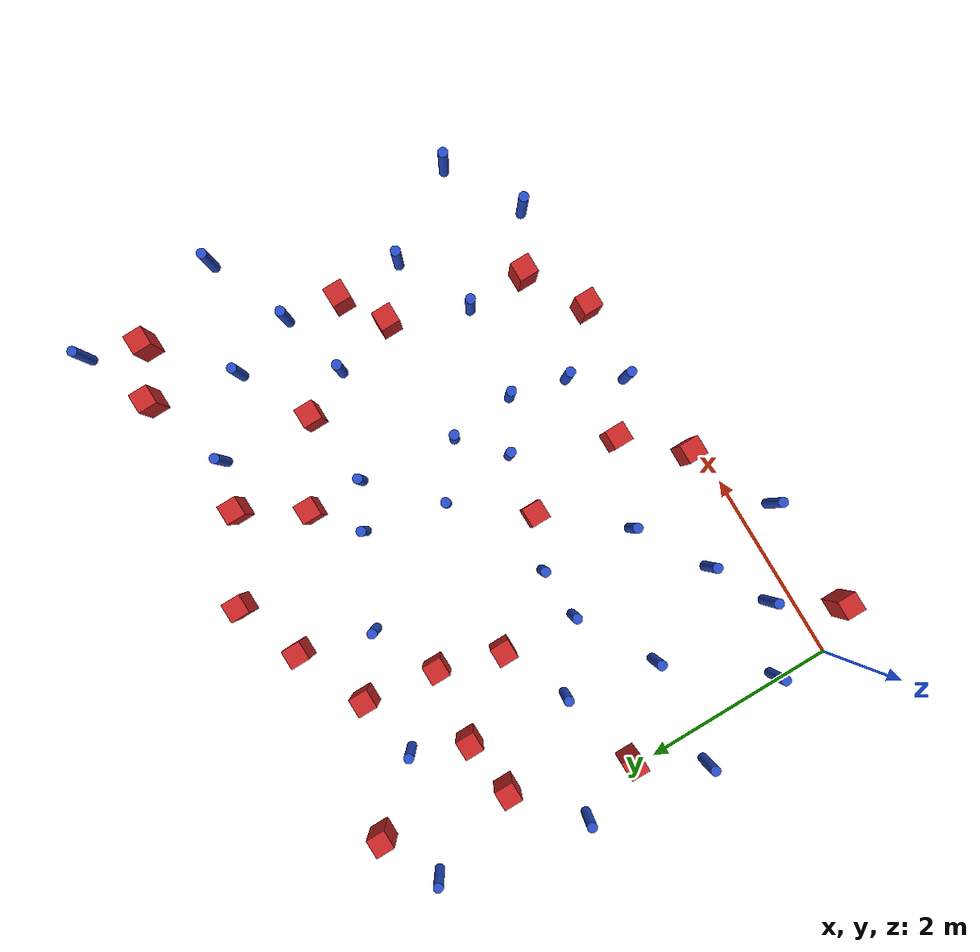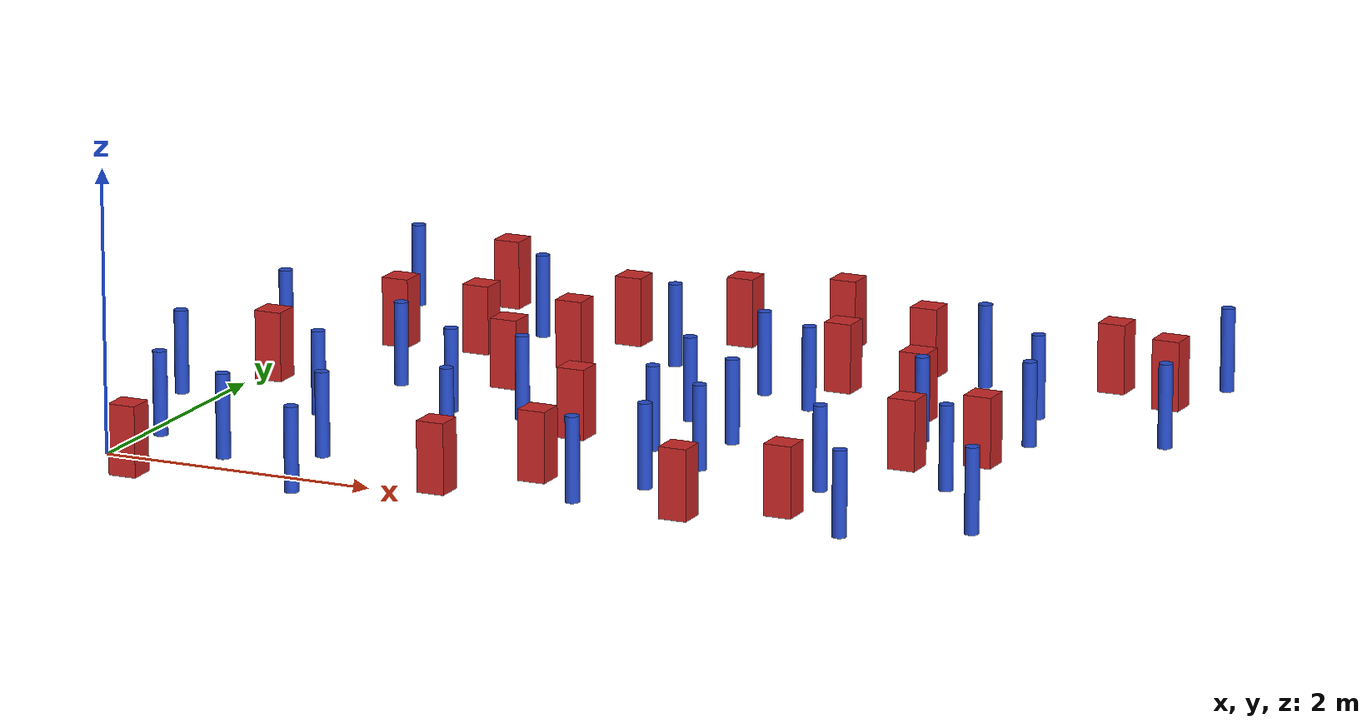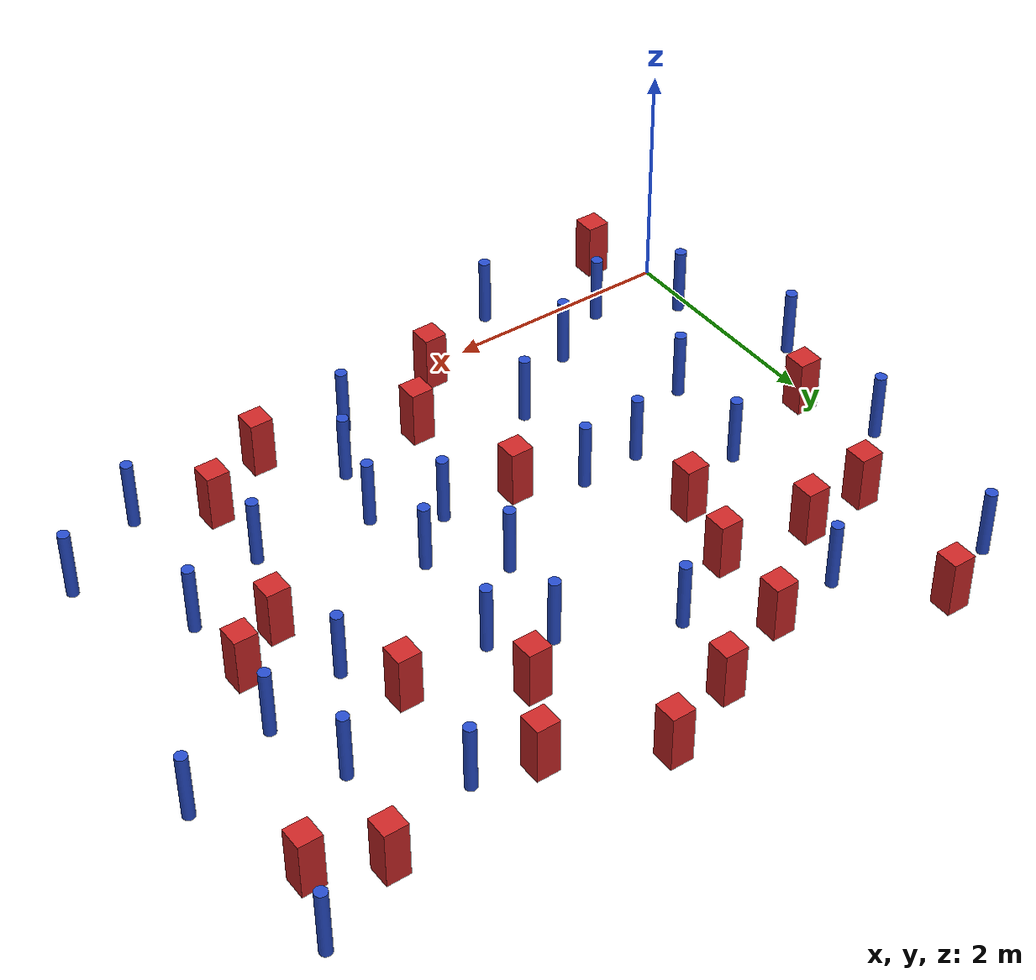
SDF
<sdf version="1.6">
 <model name="dense_23">
  <model name="square_post_obstacle2">
   <static>true</static>
   <pose>2.74004452826 4.44997248497 1.91545236811e-07 -7.35059704564e-06 1.12565212e-07 2.39332434364e-05</pose>
   <link name="link">
    <pose>0 0 0.25 0 -0 0</pose>
    <inertial>
     <mass>100</mass>
     <inertia>
      <ixx>0.166667</ixx>
      <ixy>0</ixy>
      <ixz>0</ixz>
      <iyy>0.166667</iyy>
      <iyz>0</iyz>
      <izz>0.166667</izz>
     </inertia>
    </inertial>
    <collision name="collision"><geometry><box><size>.2 .2 .5</size></box></geometry></collision>
    <visual name="visual">
     <geometry><box><size>.2 .2 .5</size></box></geometry>
     <material>
      <script><name>Gazebo/Red</name><uri>file://media/materials/scripts/gazebo.material</uri></script>
     </material>
    </visual>
   </link>
  </model>
  <model name="square_post_obstacle3">
   <static>true</static>
   <pose>5.5003414567 2.2988376357 1.91545236811e-07 -7.35059704564e-06 1.12565212e-07 2.39332434364e-05</pose>
   <link name="link">
    <pose>0 0 0.25 0 -0 0</pose>
    <inertial>
     <mass>100</mass>
     <inertia>
      <ixx>0.166667</ixx>
      <ixy>0</ixy>
      <ixz>0</ixz>
      <iyy>0.166667</iyy>
      <iyz>0</iyz>
      <izz>0.166667</izz>
     </inertia>
    </inertial>
    <collision name="collision"><geometry><box><size>.2 .2 .5</size></box></geometry></collision>
    <visual name="visual">
     <geometry><box><size>.2 .2 .5</size></box></geometry>
     <material>
      <script><name>Gazebo/Red</name><uri>file://media/materials/scripts/gazebo.material</uri></script>
     </material>
    </visual>
   </link>
  </model>
  <model name="square_post_obstacle5">
   <static>true</static>
   <pose>2.00726199635 4.14036605938 1.91545236811e-07 -7.35059704564e-06 1.12565212e-07 2.39332434364e-05</pose>
   <link name="link">
    <pose>0 0 0.25 0 -0 0</pose>
    <inertial>
     <mass>100</mass>
     <inertia>
      <ixx>0.166667</ixx>
      <ixy>0</ixy>
      <ixz>0</ixz>
      <iyy>0.166667</iyy>
      <iyz>0</iyz>
      <izz>0.166667</izz>
     </inertia>
    </inertial>
    <collision name="collision"><geometry><box><size>.2 .2 .5</size></box></geometry></collision>
    <visual name="visual">
     <geometry><box><size>.2 .2 .5</size></box></geometry>
     <material>
      <script><name>Gazebo/Red</name><uri>file://media/materials/scripts/gazebo.material</uri></script>
     </material>
    </visual>
   </link>
  </model>
  <model name="pole_obstacle5">
   <static>true</static>
   <pose>3.86888885222 3.05011009654 7.38925637345e-09 -8.47170692798e-08 1.24976764939e-08 -1.74513093025e-07</pose>
   <link name="link">
    <pose>0 0 0.3 0 -0 0</pose>
    <inertial>
     <mass>1</mass>
     <inertia><ixx>0.145833</ixx><ixy>0</ixy><ixz>0</ixz><iyy>0.145833</iyy><iyz>0</iyz><izz>0.125</izz></inertia>
    </inertial>
    <collision name="collision">
     <geometry><cylinder><radius>0.05</radius><length>.6</length></cylinder></geometry>
    </collision>
    <visual name="visual">
     <geometry><cylinder><radius>0.05</radius><length>.6</length></cylinder></geometry>
     <material>
      <script><name>Gazebo/Blue</name><uri>file://media/materials/scripts/gazebo.material</uri></script>
     </material>
    </visual>
   </link>
  </model>
  <model name="pole_obstacle19">
   <static>true</static>
   <pose>3.6784043861 0.794483437749 7.38925637345e-09 -8.471706928e-08 1.24976765177e-08 -1.74513093012e-07</pose>
   <link name="link">
    <pose>0 0 0.3 0 -0 0</pose>
    <inertial>
     <mass>1</mass>
     <inertia><ixx>0.145833</ixx><ixy>0</ixy><ixz>0</ixz><iyy>0.145833</iyy><iyz>0</iyz><izz>0.125</izz></inertia>
    </inertial>
    <collision name="collision">
     <geometry><cylinder><radius>0.05</radius><length>.6</length></cylinder></geometry>
    </collision>
    <visual name="visual">
     <geometry><cylinder><radius>0.05</radius><length>.6</length></cylinder></geometry>
     <material>
      <script><name>Gazebo/Blue</name><uri>file://media/materials/scripts/gazebo.material</uri></script>
     </material>
    </visual>
   </link>
  </model>
  <model name="pole_obstacle23">
   <static>true</static>
   <pose>6.09118267993 0.743534009738 7.38925637345e-09 -8.47170692799e-08 1.24976765038e-08 -1.74513093018e-07</pose>
   <link name="link">
    <pose>0 0 0.3 0 -0 0</pose>
    <inertial>
     <mass>1</mass>
     <inertia><ixx>0.145833</ixx><ixy>0</ixy><ixz>0</ixz><iyy>0.145833</iyy><iyz>0</iyz><izz>0.125</izz></inertia>
    </inertial>
    <collision name="collision">
     <geometry><cylinder><radius>0.05</radius><length>.6</length></cylinder></geometry>
    </collision>
    <visual name="visual">
     <geometry><cylinder><radius>0.05</radius><length>.6</length></cylinder></geometry>
     <material>
      <script><name>Gazebo/Blue</name><uri>file://media/materials/scripts/gazebo.material</uri></script>
     </material>
    </visual>
   </link>
  </model>
  <model name="pole_obstacle26">
   <static>true</static>
   <pose>2.07741708046 1.02129432986 7.38925637345e-09 -8.47170692793e-08 1.2497676438e-08 -1.74513093043e-07</pose>
   <link name="link">
    <pose>0 0 0.3 0 -0 0</pose>
    <inertial>
     <mass>1</mass>
     <inertia><ixx>0.145833</ixx><ixy>0</ixy><ixz>0</ixz><iyy>0.145833</iyy><iyz>0</iyz><izz>0.125</izz></inertia>
    </inertial>
    <collision name="collision">
     <geometry><cylinder><radius>0.05</radius><length>.6</length></cylinder></geometry>
    </collision>
    <visual name="visual">
     <geometry><cylinder><radius>0.05</radius><length>.6</length></cylinder></geometry>
     <material>
      <script><name>Gazebo/Blue</name><uri>file://media/materials/scripts/gazebo.material</uri></script>
     </material>
    </visual>
   </link>
  </model>
  <model name="square_post_obstacle33">
   <static>true</static>
   <pose>0.518776691572 3.40940659689 1.91545236811e-07 -7.35059704564e-06 1.12565212e-07 2.39332434364e-05</pose>
   <link name="link">
    <pose>0 0 0.25 0 -0 0</pose>
    <inertial>
     <mass>100</mass>
     <inertia>
      <ixx>0.166667</ixx>
      <ixy>0</ixy>
      <ixz>0</ixz>
      <iyy>0.166667</iyy>
      <iyz>0</iyz>
      <izz>0.166667</izz>
     </inertia>
    </inertial>
    <collision name="collision"><geometry><box><size>.2 .2 .5</size></box></geometry></collision>
    <visual name="visual">
     <geometry><box><size>.2 .2 .5</size></box></geometry>
     <material>
      <script><name>Gazebo/Red</name><uri>file://media/materials/scripts/gazebo.material</uri></script>
     </material>
    </visual>
   </link>
  </model>
  <model name="pole_obstacle32">
   <static>true</static>
   <pose>-0.123792153698 2.87314312874 7.38925637345e-09 -8.47170692799e-08 1.24976765077e-08 -1.74513093017e-07</pose>
   <link name="link">
    <pose>0 0 0.3 0 -0 0</pose>
    <inertial>
     <mass>1</mass>
     <inertia><ixx>0.145833</ixx><ixy>0</ixy><ixz>0</ixz><iyy>0.145833</iyy><iyz>0</iyz><izz>0.125</izz></inertia>
    </inertial>
    <collision name="collision">
     <geometry><cylinder><radius>0.05</radius><length>.6</length></cylinder></geometry>
    </collision>
    <visual name="visual">
     <geometry><cylinder><radius>0.05</radius><length>.6</length></cylinder></geometry>
     <material>
      <script><name>Gazebo/Blue</name><uri>file://media/materials/scripts/gazebo.material</uri></script>
     </material>
    </visual>
   </link>
  </model>
  <model name="square_post_obstacle37">
   <static>true</static>
   <pose>4.7731513642 0.633581381684 1.91545236811e-07 -7.35059704564e-06 1.12565212e-07 2.39332434364e-05</pose>
   <link name="link">
    <pose>0 0 0.25 0 -0 0</pose>
    <inertial>
     <mass>100</mass>
     <inertia>
      <ixx>0.166667</ixx>
      <ixy>0</ixy>
      <ixz>0</ixz>
      <iyy>0.166667</iyy>
      <iyz>0</iyz>
      <izz>0.166667</izz>
     </inertia>
    </inertial>
    <collision name="collision"><geometry><box><size>.2 .2 .5</size></box></geometry></collision>
    <visual name="visual">
     <geometry><box><size>.2 .2 .5</size></box></geometry>
     <material>
      <script><name>Gazebo/Red</name><uri>file://media/materials/scripts/gazebo.material</uri></script>
     </material>
    </visual>
   </link>
  </model>
  <model name="pole_obstacle39">
   <static>true</static>
   <pose>6.46729136939 3.20047677601 7.38925637345e-09 -8.47170692798e-08 1.24976764937e-08 -1.74513093023e-07</pose>
   <link name="link">
    <pose>0 0 0.3 0 -0 0</pose>
    <inertial>
     <mass>1</mass>
     <inertia><ixx>0.145833</ixx><ixy>0</ixy><ixz>0</ixz><iyy>0.145833</iyy><iyz>0</iyz><izz>0.125</izz></inertia>
    </inertial>
    <collision name="collision">
     <geometry><cylinder><radius>0.05</radius><length>.6</length></cylinder></geometry>
    </collision>
    <visual name="visual">
     <geometry><cylinder><radius>0.05</radius><length>.6</length></cylinder></geometry>
     <material>
      <script><name>Gazebo/Blue</name><uri>file://media/materials/scripts/gazebo.material</uri></script>
     </material>
    </visual>
   </link>
  </model>
  <model name="pole_obstacle43">
   <static>true</static>
   <pose>3.8166993312 1.36763252909 7.38925637345e-09 -8.471706928e-08 1.24976765152e-08 -1.74513093012e-07</pose>
   <link name="link">
    <pose>0 0 0.3 0 -0 0</pose>
    <inertial>
     <mass>1</mass>
     <inertia><ixx>0.145833</ixx><ixy>0</ixy><ixz>0</ixz><iyy>0.145833</iyy><iyz>0</iyz><izz>0.125</izz></inertia>
    </inertial>
    <collision name="collision">
     <geometry><cylinder><radius>0.05</radius><length>.6</length></cylinder></geometry>
    </collision>
    <visual name="visual">
     <geometry><cylinder><radius>0.05</radius><length>.6</length></cylinder></geometry>
     <material>
      <script><name>Gazebo/Blue</name><uri>file://media/materials/scripts/gazebo.material</uri></script>
     </material>
    </visual>
   </link>
  </model>
  <model name="pole_obstacle44">
   <static>true</static>
   <pose>-0.276311125176 1.59156813963 7.38925637345e-09 -8.471706928e-08 1.24976765077e-08 -1.74513093016e-07</pose>
   <link name="link">
    <pose>0 0 0.3 0 -0 0</pose>
    <inertial>
     <mass>1</mass>
     <inertia><ixx>0.145833</ixx><ixy>0</ixy><ixz>0</ixz><iyy>0.145833</iyy><iyz>0</iyz><izz>0.125</izz></inertia>
    </inertial>
    <collision name="collision">
     <geometry><cylinder><radius>0.05</radius><length>.6</length></cylinder></geometry>
    </collision>
    <visual name="visual">
     <geometry><cylinder><radius>0.05</radius><length>.6</length></cylinder></geometry>
     <material>
      <script><name>Gazebo/Blue</name><uri>file://media/materials/scripts/gazebo.material</uri></script>
     </material>
    </visual>
   </link>
  </model>
  <model name="square_post_obstacle44">
   <static>true</static>
   <pose>4.17345446867 0.275110753027 1.91545236811e-07 -7.35059704564e-06 1.12565212e-07 2.39332434364e-05</pose>
   <link name="link">
    <pose>0 0 0.25 0 -0 0</pose>
    <inertial>
     <mass>100</mass>
     <inertia>
      <ixx>0.166667</ixx>
      <ixy>0</ixy>
      <ixz>0</ixz>
      <iyy>0.166667</iyy>
      <iyz>0</iyz>
      <izz>0.166667</izz>
     </inertia>
    </inertial>
    <collision name="collision"><geometry><box><size>.2 .2 .5</size></box></geometry></collision>
    <visual name="visual">
     <geometry><box><size>.2 .2 .5</size></box></geometry>
     <material>
      <script><name>Gazebo/Red</name><uri>file://media/materials/scripts/gazebo.material</uri></script>
     </material>
    </visual>
   </link>
  </model>
  <model name="square_post_obstacle59">
   <static>true</static>
   <pose>2.92344916716 0.698422995927 1.91545236811e-07 -7.35059704564e-06 1.12565212e-07 2.39332434364e-05</pose>
   <link name="link">
    <pose>0 0 0.25 0 -0 0</pose>
    <inertial>
     <mass>100</mass>
     <inertia>
      <ixx>0.166667</ixx>
      <ixy>0</ixy>
      <ixz>0</ixz>
      <iyy>0.166667</iyy>
      <iyz>0</iyz>
      <izz>0.166667</izz>
     </inertia>
    </inertial>
    <collision name="collision"><geometry><box><size>.2 .2 .5</size></box></geometry></collision>
    <visual name="visual">
     <geometry><box><size>.2 .2 .5</size></box></geometry>
     <material>
      <script><name>Gazebo/Red</name><uri>file://media/materials/scripts/gazebo.material</uri></script>
     </material>
    </visual>
   </link>
  </model>
  <model name="pole_obstacle56">
   <static>true</static>
   <pose>0.149884830955 4.42055607667 7.38925637345e-09 -8.471706928e-08 1.24976765036e-08 -1.74513093019e-07</pose>
   <link name="link">
    <pose>0 0 0.3 0 -0 0</pose>
    <inertial>
     <mass>1</mass>
     <inertia><ixx>0.145833</ixx><ixy>0</ixy><ixz>0</ixz><iyy>0.145833</iyy><iyz>0</iyz><izz>0.125</izz></inertia>
    </inertial>
    <collision name="collision">
     <geometry><cylinder><radius>0.05</radius><length>.6</length></cylinder></geometry>
    </collision>
    <visual name="visual">
     <geometry><cylinder><radius>0.05</radius><length>.6</length></cylinder></geometry>
     <material>
      <script><name>Gazebo/Blue</name><uri>file://media/materials/scripts/gazebo.material</uri></script>
     </material>
    </visual>
   </link>
  </model>
  <model name="pole_obstacle63">
   <static>true</static>
   <pose>3.32304238893 1.67327879285 7.38925637345e-09 -8.471706928e-08 1.24976765152e-08 -1.74513093012e-07</pose>
   <link name="link">
    <pose>0 0 0.3 0 -0 0</pose>
    <inertial>
     <mass>1</mass>
     <inertia><ixx>0.145833</ixx><ixy>0</ixy><ixz>0</ixz><iyy>0.145833</iyy><iyz>0</iyz><izz>0.125</izz></inertia>
    </inertial>
    <collision name="collision">
     <geometry><cylinder><radius>0.05</radius><length>.6</length></cylinder></geometry>
    </collision>
    <visual name="visual">
     <geometry><cylinder><radius>0.05</radius><length>.6</length></cylinder></geometry>
     <material>
      <script><name>Gazebo/Blue</name><uri>file://media/materials/scripts/gazebo.material</uri></script>
     </material>
    </visual>
   </link>
  </model>
  <model name="square_post_obstacle78">
   <static>true</static>
   <pose>2.43423445934 0.157234758328 1.91545236811e-07 -7.35059704564e-06 1.12565212e-07 2.39332434364e-05</pose>
   <link name="link">
    <pose>0 0 0.25 0 -0 0</pose>
    <inertial>
     <mass>100</mass>
     <inertia>
      <ixx>0.166667</ixx>
      <ixy>0</ixy>
      <ixz>0</ixz>
      <iyy>0.166667</iyy>
      <iyz>0</iyz>
      <izz>0.166667</izz>
     </inertia>
    </inertial>
    <collision name="collision"><geometry><box><size>.2 .2 .5</size></box></geometry></collision>
    <visual name="visual">
     <geometry><box><size>.2 .2 .5</size></box></geometry>
     <material>
      <script><name>Gazebo/Red</name><uri>file://media/materials/scripts/gazebo.material</uri></script>
     </material>
    </visual>
   </link>
  </model>
  <model name="square_post_obstacle82">
   <static>true</static>
   <pose>3.86842492531 3.62858413259 1.91545236811e-07 -7.35059704564e-06 1.12565212e-07 2.39332434364e-05</pose>
   <link name="link">
    <pose>0 0 0.25 0 -0 0</pose>
    <inertial>
     <mass>100</mass>
     <inertia>
      <ixx>0.166667</ixx>
      <ixy>0</ixy>
      <ixz>0</ixz>
      <iyy>0.166667</iyy>
      <iyz>0</iyz>
      <izz>0.166667</izz>
     </inertia>
    </inertial>
    <collision name="collision"><geometry><box><size>.2 .2 .5</size></box></geometry></collision>
    <visual name="visual">
     <geometry><box><size>.2 .2 .5</size></box></geometry>
     <material>
      <script><name>Gazebo/Red</name><uri>file://media/materials/scripts/gazebo.material</uri></script>
     </material>
    </visual>
   </link>
  </model>
  <model name="square_post_obstacle87">
   <static>true</static>
   <pose>1.71121161349 2.73054634418 1.91545236811e-07 -7.35059704564e-06 1.12565212e-07 2.39332434364e-05</pose>
   <link name="link">
    <pose>0 0 0.25 0 -0 0</pose>
    <inertial>
     <mass>100</mass>
     <inertia>
      <ixx>0.166667</ixx>
      <ixy>0</ixy>
      <ixz>0</ixz>
      <iyy>0.166667</iyy>
      <iyz>0</iyz>
      <izz>0.166667</izz>
     </inertia>
    </inertial>
    <collision name="collision"><geometry><box><size>.2 .2 .5</size></box></geometry></collision>
    <visual name="visual">
     <geometry><box><size>.2 .2 .5</size></box></geometry>
     <material>
      <script><name>Gazebo/Red</name><uri>file://media/materials/scripts/gazebo.material</uri></script>
     </material>
    </visual>
   </link>
  </model>
  <model name="pole_obstacle99">
   <static>true</static>
   <pose>1.34469098253 4.01944229781 7.38925637345e-09 -8.47170692799e-08 1.24976765024e-08 -1.7451309302e-07</pose>
   <link name="link">
    <pose>0 0 0.3 0 -0 0</pose>
    <inertial>
     <mass>1</mass>
     <inertia><ixx>0.145833</ixx><ixy>0</ixy><ixz>0</ixz><iyy>0.145833</iyy><iyz>0</iyz><izz>0.125</izz></inertia>
    </inertial>
    <collision name="collision">
     <geometry><cylinder><radius>0.05</radius><length>.6</length></cylinder></geometry>
    </collision>
    <visual name="visual">
     <geometry><cylinder><radius>0.05</radius><length>.6</length></cylinder></geometry>
     <material>
      <script><name>Gazebo/Blue</name><uri>file://media/materials/scripts/gazebo.material</uri></script>
     </material>
    </visual>
   </link>
  </model>
  <model name="pole_obstacle100">
   <static>true</static>
   <pose>5.33045395886 0.305030611998 7.38925637345e-09 -8.47170692798e-08 1.24976765003e-08 -1.7451309302e-07</pose>
   <link name="link">
    <pose>0 0 0.3 0 -0 0</pose>
    <inertial>
     <mass>1</mass>
     <inertia><ixx>0.145833</ixx><ixy>0</ixy><ixz>0</ixz><iyy>0.145833</iyy><iyz>0</iyz><izz>0.125</izz></inertia>
    </inertial>
    <collision name="collision">
     <geometry><cylinder><radius>0.05</radius><length>.6</length></cylinder></geometry>
    </collision>
    <visual name="visual">
     <geometry><cylinder><radius>0.05</radius><length>.6</length></cylinder></geometry>
     <material>
      <script><name>Gazebo/Blue</name><uri>file://media/materials/scripts/gazebo.material</uri></script>
     </material>
    </visual>
   </link>
  </model>
  <model name="pole_obstacle107">
   <static>true</static>
   <pose>5.52683108441 1.61557675395 7.38925637345e-09 -8.471706928e-08 1.24976765134e-08 -1.74513093015e-07</pose>
   <link name="link">
    <pose>0 0 0.3 0 -0 0</pose>
    <inertial>
     <mass>1</mass>
     <inertia><ixx>0.145833</ixx><ixy>0</ixy><ixz>0</ixz><iyy>0.145833</iyy><iyz>0</iyz><izz>0.125</izz></inertia>
    </inertial>
    <collision name="collision">
     <geometry><cylinder><radius>0.05</radius><length>.6</length></cylinder></geometry>
    </collision>
    <visual name="visual">
     <geometry><cylinder><radius>0.05</radius><length>.6</length></cylinder></geometry>
     <material>
      <script><name>Gazebo/Blue</name><uri>file://media/materials/scripts/gazebo.material</uri></script>
     </material>
    </visual>
   </link>
  </model>
  <model name="pole_obstacle111">
   <static>true</static>
   <pose>2.17846386794 1.98630014566 7.38925637345e-09 -8.47170692799e-08 1.24976764986e-08 -1.74513093023e-07</pose>
   <link name="link">
    <pose>0 0 0.3 0 -0 0</pose>
    <inertial>
     <mass>1</mass>
     <inertia><ixx>0.145833</ixx><ixy>0</ixy><ixz>0</ixz><iyy>0.145833</iyy><iyz>0</iyz><izz>0.125</izz></inertia>
    </inertial>
    <collision name="collision">
     <geometry><cylinder><radius>0.05</radius><length>.6</length></cylinder></geometry>
    </collision>
    <visual name="visual">
     <geometry><cylinder><radius>0.05</radius><length>.6</length></cylinder></geometry>
     <material>
      <script><name>Gazebo/Blue</name><uri>file://media/materials/scripts/gazebo.material</uri></script>
     </material>
    </visual>
   </link>
  </model>
  <model name="pole_obstacle113">
   <static>true</static>
   <pose>1.35722735015 0.572515356399 7.38925637345e-09 -8.47170692799e-08 1.24976765075e-08 -1.74513093017e-07</pose>
   <link name="link">
    <pose>0 0 0.3 0 -0 0</pose>
    <inertial>
     <mass>1</mass>
     <inertia><ixx>0.145833</ixx><ixy>0</ixy><ixz>0</ixz><iyy>0.145833</iyy><iyz>0</iyz><izz>0.125</izz></inertia>
    </inertial>
    <collision name="collision">
     <geometry><cylinder><radius>0.05</radius><length>.6</length></cylinder></geometry>
    </collision>
    <visual name="visual">
     <geometry><cylinder><radius>0.05</radius><length>.6</length></cylinder></geometry>
     <material>
      <script><name>Gazebo/Blue</name><uri>file://media/materials/scripts/gazebo.material</uri></script>
     </material>
    </visual>
   </link>
  </model>
  <model name="pole_obstacle114">
   <static>true</static>
   <pose>5.39027143031 3.52348049784 7.38925637345e-09 -8.47170692798e-08 1.24976764937e-08 -1.74513093023e-07</pose>
   <link name="link">
    <pose>0 0 0.3 0 -0 0</pose>
    <inertial>
     <mass>1</mass>
     <inertia><ixx>0.145833</ixx><ixy>0</ixy><ixz>0</ixz><iyy>0.145833</iyy><iyz>0</iyz><izz>0.125</izz></inertia>
    </inertial>
    <collision name="collision">
     <geometry><cylinder><radius>0.05</radius><length>.6</length></cylinder></geometry>
    </collision>
    <visual name="visual">
     <geometry><cylinder><radius>0.05</radius><length>.6</length></cylinder></geometry>
     <material>
      <script><name>Gazebo/Blue</name><uri>file://media/materials/scripts/gazebo.material</uri></script>
     </material>
    </visual>
   </link>
  </model>
  <model name="pole_obstacle120">
   <static>true</static>
   <pose>4.74124433946 4.11118361531 7.38925637345e-09 -8.47170692796e-08 1.24976764786e-08 -1.74513093032e-07</pose>
   <link name="link">
    <pose>0 0 0.3 0 -0 0</pose>
    <inertial>
     <mass>1</mass>
     <inertia><ixx>0.145833</ixx><ixy>0</ixy><ixz>0</ixz><iyy>0.145833</iyy><iyz>0</iyz><izz>0.125</izz></inertia>
    </inertial>
    <collision name="collision">
     <geometry><cylinder><radius>0.05</radius><length>.6</length></cylinder></geometry>
    </collision>
    <visual name="visual">
     <geometry><cylinder><radius>0.05</radius><length>.6</length></cylinder></geometry>
     <material>
      <script><name>Gazebo/Blue</name><uri>file://media/materials/scripts/gazebo.material</uri></script>
     </material>
    </visual>
   </link>
  </model>
  <model name="pole_obstacle130">
   <static>true</static>
   <pose>2.53861991023 3.70097407299 7.38925637345e-09 -8.47170692798e-08 1.24976764939e-08 -1.74513093025e-07</pose>
   <link name="link">
    <pose>0 0 0.3 0 -0 0</pose>
    <inertial>
     <mass>1</mass>
     <inertia><ixx>0.145833</ixx><ixy>0</ixy><ixz>0</ixz><iyy>0.145833</iyy><iyz>0</iyz><izz>0.125</izz></inertia>
    </inertial>
    <collision name="collision">
     <geometry><cylinder><radius>0.05</radius><length>.6</length></cylinder></geometry>
    </collision>
    <visual name="visual">
     <geometry><cylinder><radius>0.05</radius><length>.6</length></cylinder></geometry>
     <material>
      <script><name>Gazebo/Blue</name><uri>file://media/materials/scripts/gazebo.material</uri></script>
     </material>
    </visual>
   </link>
  </model>
  <model name="pole_obstacle131">
   <static>true</static>
   <pose>1.0141806648 2.43565714776 7.38925637345e-09 -8.471706928e-08 1.2497676505e-08 -1.74513093017e-07</pose>
   <link name="link">
    <pose>0 0 0.3 0 -0 0</pose>
    <inertial>
     <mass>1</mass>
     <inertia><ixx>0.145833</ixx><ixy>0</ixy><ixz>0</ixz><iyy>0.145833</iyy><iyz>0</iyz><izz>0.125</izz></inertia>
    </inertial>
    <collision name="collision">
     <geometry><cylinder><radius>0.05</radius><length>.6</length></cylinder></geometry>
    </collision>
    <visual name="visual">
     <geometry><cylinder><radius>0.05</radius><length>.6</length></cylinder></geometry>
     <material>
      <script><name>Gazebo/Blue</name><uri>file://media/materials/scripts/gazebo.material</uri></script>
     </material>
    </visual>
   </link>
  </model>
  <model name="square_post_obstacle126">
   <static>true</static>
   <pose>1.90401485807 3.37776465981 1.91545236811e-07 -7.35059704564e-06 1.12565212e-07 2.39332434364e-05</pose>
   <link name="link">
    <pose>0 0 0.25 0 -0 0</pose>
    <inertial>
     <mass>100</mass>
     <inertia>
      <ixx>0.166667</ixx>
      <ixy>0</ixy>
      <ixz>0</ixz>
      <iyy>0.166667</iyy>
      <iyz>0</iyz>
      <izz>0.166667</izz>
     </inertia>
    </inertial>
    <collision name="collision"><geometry><box><size>.2 .2 .5</size></box></geometry></collision>
    <visual name="visual">
     <geometry><box><size>.2 .2 .5</size></box></geometry>
     <material>
      <script><name>Gazebo/Red</name><uri>file://media/materials/scripts/gazebo.material</uri></script>
     </material>
    </visual>
   </link>
  </model>
  <model name="square_post_obstacle130">
   <static>true</static>
   <pose>6.11264661224 4.1706509674 1.91545236811e-07 -7.35059704564e-06 1.12565212e-07 2.39332434364e-05</pose>
   <link name="link">
    <pose>0 0 0.25 0 -0 0</pose>
    <inertial>
     <mass>100</mass>
     <inertia>
      <ixx>0.166667</ixx>
      <ixy>0</ixy>
      <ixz>0</ixz>
      <iyy>0.166667</iyy>
      <iyz>0</iyz>
      <izz>0.166667</izz>
     </inertia>
    </inertial>
    <collision name="collision"><geometry><box><size>.2 .2 .5</size></box></geometry></collision>
    <visual name="visual">
     <geometry><box><size>.2 .2 .5</size></box></geometry>
     <material>
      <script><name>Gazebo/Red</name><uri>file://media/materials/scripts/gazebo.material</uri></script>
     </material>
    </visual>
   </link>
  </model>
  <model name="pole_obstacle145">
   <static>true</static>
   <pose>0.764921902505 0.250699216791 7.38925637345e-09 -8.471706928e-08 1.24976765127e-08 -1.74513093013e-07</pose>
   <link name="link">
    <pose>0 0 0.3 0 -0 0</pose>
    <inertial>
     <mass>1</mass>
     <inertia><ixx>0.145833</ixx><ixy>0</ixy><ixz>0</ixz><iyy>0.145833</iyy><iyz>0</iyz><izz>0.125</izz></inertia>
    </inertial>
    <collision name="collision">
     <geometry><cylinder><radius>0.05</radius><length>.6</length></cylinder></geometry>
    </collision>
    <visual name="visual">
     <geometry><cylinder><radius>0.05</radius><length>.6</length></cylinder></geometry>
     <material>
      <script><name>Gazebo/Blue</name><uri>file://media/materials/scripts/gazebo.material</uri></script>
     </material>
    </visual>
   </link>
  </model>
  <model name="pole_obstacle147">
   <static>true</static>
   <pose>4.8962752184 2.65623213325 7.38925637345e-09 -8.47170692798e-08 1.24976764937e-08 -1.74513093023e-07</pose>
   <link name="link">
    <pose>0 0 0.3 0 -0 0</pose>
    <inertial>
     <mass>1</mass>
     <inertia><ixx>0.145833</ixx><ixy>0</ixy><ixz>0</ixz><iyy>0.145833</iyy><iyz>0</iyz><izz>0.125</izz></inertia>
    </inertial>
    <collision name="collision">
     <geometry><cylinder><radius>0.05</radius><length>.6</length></cylinder></geometry>
    </collision>
    <visual name="visual">
     <geometry><cylinder><radius>0.05</radius><length>.6</length></cylinder></geometry>
     <material>
      <script><name>Gazebo/Blue</name><uri>file://media/materials/scripts/gazebo.material</uri></script>
     </material>
    </visual>
   </link>
  </model>
  <model name="pole_obstacle148">
   <static>true</static>
   <pose>0.844227099347 1.50445165144 7.38925637345e-09 -8.47170692799e-08 1.24976765033e-08 -1.7451309302e-07</pose>
   <link name="link">
    <pose>0 0 0.3 0 -0 0</pose>
    <inertial>
     <mass>1</mass>
     <inertia><ixx>0.145833</ixx><ixy>0</ixy><ixz>0</ixz><iyy>0.145833</iyy><iyz>0</iyz><izz>0.125</izz></inertia>
    </inertial>
    <collision name="collision">
     <geometry><cylinder><radius>0.05</radius><length>.6</length></cylinder></geometry>
    </collision>
    <visual name="visual">
     <geometry><cylinder><radius>0.05</radius><length>.6</length></cylinder></geometry>
     <material>
      <script><name>Gazebo/Blue</name><uri>file://media/materials/scripts/gazebo.material</uri></script>
     </material>
    </visual>
   </link>
  </model>
  <model name="pole_obstacle149">
   <static>true</static>
   <pose>5.611450467 2.84994746284 7.38925637345e-09 -8.47170692798e-08 1.24976764937e-08 -1.74513093023e-07</pose>
   <link name="link">
    <pose>0 0 0.3 0 -0 0</pose>
    <inertial>
     <mass>1</mass>
     <inertia><ixx>0.145833</ixx><ixy>0</ixy><ixz>0</ixz><iyy>0.145833</iyy><iyz>0</iyz><izz>0.125</izz></inertia>
    </inertial>
    <collision name="collision">
     <geometry><cylinder><radius>0.05</radius><length>.6</length></cylinder></geometry>
    </collision>
    <visual name="visual">
     <geometry><cylinder><radius>0.05</radius><length>.6</length></cylinder></geometry>
     <material>
      <script><name>Gazebo/Blue</name><uri>file://media/materials/scripts/gazebo.material</uri></script>
     </material>
    </visual>
   </link>
  </model>
  <model name="square_post_obstacle142">
   <static>true</static>
   <pose>2.69931616356 1.76662041719 1.91545236811e-07 -7.35059704564e-06 1.12565212e-07 2.39332434364e-05</pose>
   <link name="link">
    <pose>0 0 0.25 0 -0 0</pose>
    <inertial>
     <mass>100</mass>
     <inertia>
      <ixx>0.166667</ixx>
      <ixy>0</ixy>
      <ixz>0</ixz>
      <iyy>0.166667</iyy>
      <iyz>0</iyz>
      <izz>0.166667</izz>
     </inertia>
    </inertial>
    <collision name="collision"><geometry><box><size>.2 .2 .5</size></box></geometry></collision>
    <visual name="visual">
     <geometry><box><size>.2 .2 .5</size></box></geometry>
     <material>
      <script><name>Gazebo/Red</name><uri>file://media/materials/scripts/gazebo.material</uri></script>
     </material>
    </visual>
   </link>
  </model>
  <model name="square_post_obstacle146">
   <static>true</static>
   <pose>4.65564173795 3.13898180986 1.91545236811e-07 -7.35059704564e-06 1.12565212e-07 2.39332434364e-05</pose>
   <link name="link">
    <pose>0 0 0.25 0 -0 0</pose>
    <inertial>
     <mass>100</mass>
     <inertia>
      <ixx>0.166667</ixx>
      <ixy>0</ixy>
      <ixz>0</ixz>
      <iyy>0.166667</iyy>
      <iyz>0</iyz>
      <izz>0.166667</izz>
     </inertia>
    </inertial>
    <collision name="collision"><geometry><box><size>.2 .2 .5</size></box></geometry></collision>
    <visual name="visual">
     <geometry><box><size>.2 .2 .5</size></box></geometry>
     <material>
      <script><name>Gazebo/Red</name><uri>file://media/materials/scripts/gazebo.material</uri></script>
     </material>
    </visual>
   </link>
  </model>
  <model name="pole_obstacle156">
   <static>true</static>
   <pose>3.4236863803 3.28266403506 7.38925637345e-09 -8.47170692798e-08 1.24976764939e-08 -1.74513093025e-07</pose>
   <link name="link">
    <pose>0 0 0.3 0 -0 0</pose>
    <inertial>
     <mass>1</mass>
     <inertia><ixx>0.145833</ixx><ixy>0</ixy><ixz>0</ixz><iyy>0.145833</iyy><iyz>0</iyz><izz>0.125</izz></inertia>
    </inertial>
    <collision name="collision">
     <geometry><cylinder><radius>0.05</radius><length>.6</length></cylinder></geometry>
    </collision>
    <visual name="visual">
     <geometry><cylinder><radius>0.05</radius><length>.6</length></cylinder></geometry>
     <material>
      <script><name>Gazebo/Blue</name><uri>file://media/materials/scripts/gazebo.material</uri></script>
     </material>
    </visual>
   </link>
  </model>
  <model name="square_post_obstacle149">
   <static>true</static>
   <pose>4.24840614618 4.25243659055 1.91545236811e-07 -7.35059704564e-06 1.12565212e-07 2.39332434364e-05</pose>
   <link name="link">
    <pose>0 0 0.25 0 -0 0</pose>
    <inertial>
     <mass>100</mass>
     <inertia>
      <ixx>0.166667</ixx>
      <ixy>0</ixy>
      <ixz>0</ixz>
      <iyy>0.166667</iyy>
      <iyz>0</iyz>
      <izz>0.166667</izz>
     </inertia>
    </inertial>
    <collision name="collision"><geometry><box><size>.2 .2 .5</size></box></geometry></collision>
    <visual name="visual">
     <geometry><box><size>.2 .2 .5</size></box></geometry>
     <material>
      <script><name>Gazebo/Red</name><uri>file://media/materials/scripts/gazebo.material</uri></script>
     </material>
    </visual>
   </link>
  </model>
  <model name="square_post_obstacle157">
   <static>true</static>
   <pose>5.06208984538 2.01843706307 1.91545236811e-07 -7.35059704564e-06 1.12565212e-07 2.39332434364e-05</pose>
   <link name="link">
    <pose>0 0 0.25 0 -0 0</pose>
    <inertial>
     <mass>100</mass>
     <inertia>
      <ixx>0.166667</ixx>
      <ixy>0</ixy>
      <ixz>0</ixz>
      <iyy>0.166667</iyy>
      <iyz>0</iyz>
      <izz>0.166667</izz>
     </inertia>
    </inertial>
    <collision name="collision"><geometry><box><size>.2 .2 .5</size></box></geometry></collision>
    <visual name="visual">
     <geometry><box><size>.2 .2 .5</size></box></geometry>
     <material>
      <script><name>Gazebo/Red</name><uri>file://media/materials/scripts/gazebo.material</uri></script>
     </material>
    </visual>
   </link>
  </model>
  <model name="square_post_obstacle159">
   <static>true</static>
   <pose>1.12393538461 3.47744458906 1.91545236811e-07 -7.35059704564e-06 1.12565212e-07 2.39332434364e-05</pose>
   <link name="link">
    <pose>0 0 0.25 0 -0 0</pose>
    <inertial>
     <mass>100</mass>
     <inertia>
      <ixx>0.166667</ixx>
      <ixy>0</ixy>
      <ixz>0</ixz>
      <iyy>0.166667</iyy>
      <iyz>0</iyz>
      <izz>0.166667</izz>
     </inertia>
    </inertial>
    <collision name="collision"><geometry><box><size>.2 .2 .5</size></box></geometry></collision>
    <visual name="visual">
     <geometry><box><size>.2 .2 .5</size></box></geometry>
     <material>
      <script><name>Gazebo/Red</name><uri>file://media/materials/scripts/gazebo.material</uri></script>
     </material>
    </visual>
   </link>
  </model>
  <model name="pole_obstacle169">
   <static>true</static>
   <pose>1.64290610664 1.96075767191 7.38925637345e-09 -8.47170692798e-08 1.24976765017e-08 -1.7451309302e-07</pose>
   <link name="link">
    <pose>0 0 0.3 0 -0 0</pose>
    <inertial>
     <mass>1</mass>
     <inertia><ixx>0.145833</ixx><ixy>0</ixy><ixz>0</ixz><iyy>0.145833</iyy><iyz>0</iyz><izz>0.125</izz></inertia>
    </inertial>
    <collision name="collision">
     <geometry><cylinder><radius>0.05</radius><length>.6</length></cylinder></geometry>
    </collision>
    <visual name="visual">
     <geometry><cylinder><radius>0.05</radius><length>.6</length></cylinder></geometry>
     <material>
      <script><name>Gazebo/Blue</name><uri>file://media/materials/scripts/gazebo.material</uri></script>
     </material>
    </visual>
   </link>
  </model>
  <model name="pole_obstacle172">
   <static>true</static>
   <pose>4.76711739732 1.24380400241 7.38925637345e-09 -8.471706928e-08 1.24976765134e-08 -1.74513093015e-07</pose>
   <link name="link">
    <pose>0 0 0.3 0 -0 0</pose>
    <inertial>
     <mass>1</mass>
     <inertia><ixx>0.145833</ixx><ixy>0</ixy><ixz>0</ixz><iyy>0.145833</iyy><iyz>0</iyz><izz>0.125</izz></inertia>
    </inertial>
    <collision name="collision">
     <geometry><cylinder><radius>0.05</radius><length>.6</length></cylinder></geometry>
    </collision>
    <visual name="visual">
     <geometry><cylinder><radius>0.05</radius><length>.6</length></cylinder></geometry>
     <material>
      <script><name>Gazebo/Blue</name><uri>file://media/materials/scripts/gazebo.material</uri></script>
     </material>
    </visual>
   </link>
  </model>
  <model name="pole_obstacle179">
   <static>true</static>
   <pose>3.74528586074 2.05023647152 7.38925637345e-09 -8.47170692798e-08 1.24976764939e-08 -1.74513093025e-07</pose>
   <link name="link">
    <pose>0 0 0.3 0 -0 0</pose>
    <inertial>
     <mass>1</mass>
     <inertia><ixx>0.145833</ixx><ixy>0</ixy><ixz>0</ixz><iyy>0.145833</iyy><iyz>0</iyz><izz>0.125</izz></inertia>
    </inertial>
    <collision name="collision">
     <geometry><cylinder><radius>0.05</radius><length>.6</length></cylinder></geometry>
    </collision>
    <visual name="visual">
     <geometry><cylinder><radius>0.05</radius><length>.6</length></cylinder></geometry>
     <material>
      <script><name>Gazebo/Blue</name><uri>file://media/materials/scripts/gazebo.material</uri></script>
     </material>
    </visual>
   </link>
  </model>
  <model name="pole_obstacle182">
   <static>true</static>
   <pose>3.37890135898 0.296291370865 7.38925637345e-09 -8.471706928e-08 1.24976765126e-08 -1.74513093015e-07</pose>
   <link name="link">
    <pose>0 0 0.3 0 -0 0</pose>
    <inertial>
     <mass>1</mass>
     <inertia><ixx>0.145833</ixx><ixy>0</ixy><ixz>0</ixz><iyy>0.145833</iyy><iyz>0</iyz><izz>0.125</izz></inertia>
    </inertial>
    <collision name="collision">
     <geometry><cylinder><radius>0.05</radius><length>.6</length></cylinder></geometry>
    </collision>
    <visual name="visual">
     <geometry><cylinder><radius>0.05</radius><length>.6</length></cylinder></geometry>
     <material>
      <script><name>Gazebo/Blue</name><uri>file://media/materials/scripts/gazebo.material</uri></script>
     </material>
    </visual>
   </link>
  </model>
  <model name="square_post_obstacle171">
   <static>true</static>
   <pose>0.76720076038 4.69903804857 1.91545236811e-07 -7.35059704564e-06 1.12565212e-07 2.39332434364e-05</pose>
   <link name="link">
    <pose>0 0 0.25 0 -0 0</pose>
    <inertial>
     <mass>100</mass>
     <inertia>
      <ixx>0.166667</ixx>
      <ixy>0</ixy>
      <ixz>0</ixz>
      <iyy>0.166667</iyy>
      <iyz>0</iyz>
      <izz>0.166667</izz>
     </inertia>
    </inertial>
    <collision name="collision"><geometry><box><size>.2 .2 .5</size></box></geometry></collision>
    <visual name="visual">
     <geometry><box><size>.2 .2 .5</size></box></geometry>
     <material>
      <script><name>Gazebo/Red</name><uri>file://media/materials/scripts/gazebo.material</uri></script>
     </material>
    </visual>
   </link>
  </model>
  <model name="pole_obstacle183">
   <static>true</static>
   <pose>1.56757202477 -0.284374319754 7.38925637345e-09 -8.47170692798e-08 1.24976764989e-08 -1.74513093022e-07</pose>
   <link name="link">
    <pose>0 0 0.3 0 -0 0</pose>
    <inertial>
     <mass>1</mass>
     <inertia><ixx>0.145833</ixx><ixy>0</ixy><ixz>0</ixz><iyy>0.145833</iyy><iyz>0</iyz><izz>0.125</izz></inertia>
    </inertial>
    <collision name="collision">
     <geometry><cylinder><radius>0.05</radius><length>.6</length></cylinder></geometry>
    </collision>
    <visual name="visual">
     <geometry><cylinder><radius>0.05</radius><length>.6</length></cylinder></geometry>
     <material>
      <script><name>Gazebo/Blue</name><uri>file://media/materials/scripts/gazebo.material</uri></script>
     </material>
    </visual>
   </link>
  </model>
  <model name="pole_obstacle186">
   <static>true</static>
   <pose>0.106024862871 0.573728985033 7.38925637345e-09 -8.47170692799e-08 1.24976765062e-08 -1.74513093016e-07</pose>
   <link name="link">
    <pose>0 0 0.3 0 -0 0</pose>
    <inertial>
     <mass>1</mass>
     <inertia><ixx>0.145833</ixx><ixy>0</ixy><ixz>0</ixz><iyy>0.145833</iyy><iyz>0</iyz><izz>0.125</izz></inertia>
    </inertial>
    <collision name="collision">
     <geometry><cylinder><radius>0.05</radius><length>.6</length></cylinder></geometry>
    </collision>
    <visual name="visual">
     <geometry><cylinder><radius>0.05</radius><length>.6</length></cylinder></geometry>
     <material>
      <script><name>Gazebo/Blue</name><uri>file://media/materials/scripts/gazebo.material</uri></script>
     </material>
    </visual>
   </link>
  </model>
  <model name="square_post_obstacle176">
   <static>true</static>
   <pose>3.42399658044 4.7081084345 1.91545236811e-07 -7.35059704564e-06 1.12565212e-07 2.39332434364e-05</pose>
   <link name="link">
    <pose>0 0 0.25 0 -0 0</pose>
    <inertial>
     <mass>100</mass>
     <inertia>
      <ixx>0.166667</ixx>
      <ixy>0</ixy>
      <ixz>0</ixz>
      <iyy>0.166667</iyy>
      <iyz>0</iyz>
      <izz>0.166667</izz>
     </inertia>
    </inertial>
    <collision name="collision"><geometry><box><size>.2 .2 .5</size></box></geometry></collision>
    <visual name="visual">
     <geometry><box><size>.2 .2 .5</size></box></geometry>
     <material>
      <script><name>Gazebo/Red</name><uri>file://media/materials/scripts/gazebo.material</uri></script>
     </material>
    </visual>
   </link>
  </model>
  <model name="square_post_obstacle183">
   <static>true</static>
   <pose>0.123315161112 2.22061374139 1.91545236811e-07 -7.35059704564e-06 1.12565212e-07 2.39332434364e-05</pose>
   <link name="link">
    <pose>0 0 0.25 0 -0 0</pose>
    <inertial>
     <mass>100</mass>
     <inertia>
      <ixx>0.166667</ixx>
      <ixy>0</ixy>
      <ixz>0</ixz>
      <iyy>0.166667</iyy>
      <iyz>0</iyz>
      <izz>0.166667</izz>
     </inertia>
    </inertial>
    <collision name="collision"><geometry><box><size>.2 .2 .5</size></box></geometry></collision>
    <visual name="visual">
     <geometry><box><size>.2 .2 .5</size></box></geometry>
     <material>
      <script><name>Gazebo/Red</name><uri>file://media/materials/scripts/gazebo.material</uri></script>
     </material>
    </visual>
   </link>
  </model>
  <model name="square_post_obstacle196">
   <static>true</static>
   <pose>0.363278834765 -0.352557672335 1.91545236811e-07 -7.35059704564e-06 1.12565212e-07 2.39332434364e-05</pose>
   <link name="link">
    <pose>0 0 0.25 0 -0 0</pose>
    <inertial>
     <mass>100</mass>
     <inertia>
      <ixx>0.166667</ixx>
      <ixy>0</ixy>
      <ixz>0</ixz>
      <iyy>0.166667</iyy>
      <iyz>0</iyz>
      <izz>0.166667</izz>
     </inertia>
    </inertial>
    <collision name="collision"><geometry><box><size>.2 .2 .5</size></box></geometry></collision>
    <visual name="visual">
     <geometry><box><size>.2 .2 .5</size></box></geometry>
     <material>
      <script><name>Gazebo/Red</name><uri>file://media/materials/scripts/gazebo.material</uri></script>
     </material>
    </visual>
   </link>
  </model>
  <model name="pole_obstacle191">
   <static>true</static>
   <pose>3.23835137609 2.45322230597 7.38925637345e-09 -8.47170692798e-08 1.24976764939e-08 -1.74513093025e-07</pose>
   <link name="link">
    <pose>0 0 0.3 0 -0 0</pose>
    <inertial>
     <mass>1</mass>
     <inertia><ixx>0.145833</ixx><ixy>0</ixy><ixz>0</ixz><iyy>0.145833</iyy><iyz>0</iyz><izz>0.125</izz></inertia>
    </inertial>
    <collision name="collision">
     <geometry><cylinder><radius>0.05</radius><length>.6</length></cylinder></geometry>
    </collision>
    <visual name="visual">
     <geometry><cylinder><radius>0.05</radius><length>.6</length></cylinder></geometry>
     <material>
      <script><name>Gazebo/Blue</name><uri>file://media/materials/scripts/gazebo.material</uri></script>
     </material>
    </visual>
   </link>
  </model>
  <model name="pole_obstacle209">
   <static>true</static>
   <pose>6.31395494196 4.73380437029 7.38925637345e-09 -8.47170692796e-08 1.24976764786e-08 -1.74513093032e-07</pose>
   <link name="link">
    <pose>0 0 0.3 0 -0 0</pose>
    <inertial>
     <mass>1</mass>
     <inertia><ixx>0.145833</ixx><ixy>0</ixy><ixz>0</ixz><iyy>0.145833</iyy><iyz>0</iyz><izz>0.125</izz></inertia>
    </inertial>
    <collision name="collision">
     <geometry><cylinder><radius>0.05</radius><length>.6</length></cylinder></geometry>
    </collision>
    <visual name="visual">
     <geometry><cylinder><radius>0.05</radius><length>.6</length></cylinder></geometry>
     <material>
      <script><name>Gazebo/Blue</name><uri>file://media/materials/scripts/gazebo.material</uri></script>
     </material>
    </visual>
   </link>
  </model>
  <model name="square_post_obstacle205">
   <static>true</static>
   <pose>5.60454738788 4.41887134947 1.91545236811e-07 -7.35059704564e-06 1.12565212e-07 2.39332434364e-05</pose>
   <link name="link">
    <pose>0 0 0.25 0 -0 0</pose>
    <inertial>
     <mass>100</mass>
     <inertia>
      <ixx>0.166667</ixx>
      <ixy>0</ixy>
      <ixz>0</ixz>
      <iyy>0.166667</iyy>
      <iyz>0</iyz>
      <izz>0.166667</izz>
     </inertia>
    </inertial>
    <collision name="collision"><geometry><box><size>.2 .2 .5</size></box></geometry></collision>
    <visual name="visual">
     <geometry><box><size>.2 .2 .5</size></box></geometry>
     <material>
      <script><name>Gazebo/Red</name><uri>file://media/materials/scripts/gazebo.material</uri></script>
     </material>
    </visual>
   </link>
  </model>
 </model>
</sdf>
